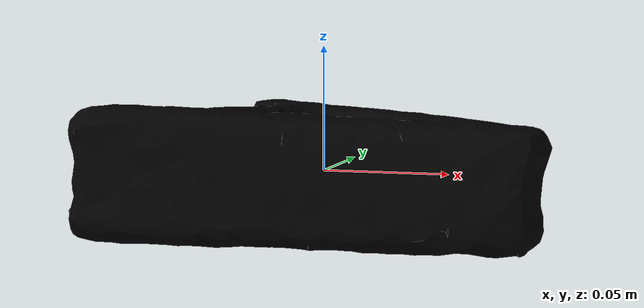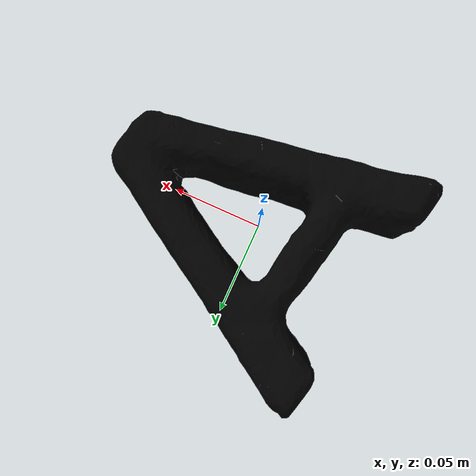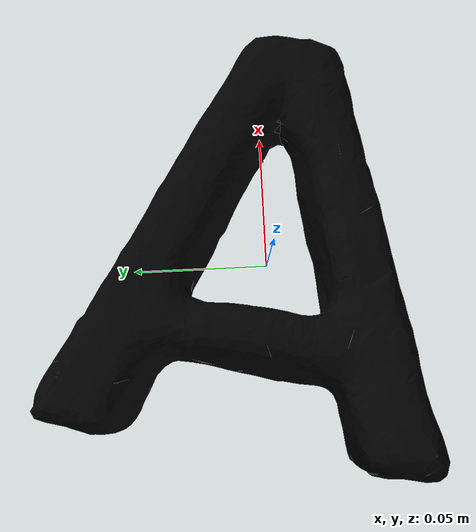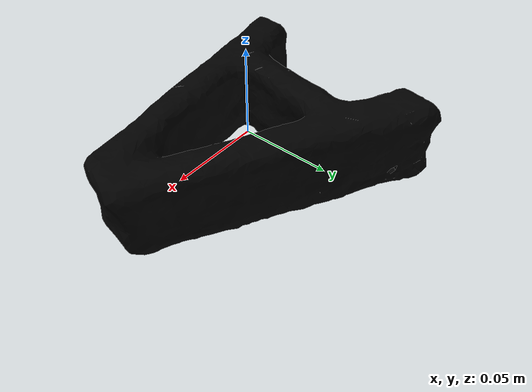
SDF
<?xml version="1.0"?>
<sdf version="1.7">
<!-- This SDF was autogenerated by controller_sdf_generation.py -->
  <model name="anything">
    <link name="body">
      <inertial>
        <pose>0 0 0 0 0 0</pose>
        <mass>1</mass>
        <inertia>
            <ixx>0.003</ixx>
            <iyy>0.003 </iyy>
            <izz>0.006 </izz>
            <ixy>0.0</ixy>
            <ixz>0.0</ixz>
            <iyz>0.0</iyz>
        </inertia>
      </inertial>

      <visual name="body">
        <pose>0 0 0 0 0 0</pose>
        <geometry>
          <mesh>
            <uri>A_shape_coarse.obj</uri>
          </mesh>
        </geometry>
        <material>
          <diffuse>0 0 0 1</diffuse>
        </material>
      </visual>
      <collision name="body_volume">
        <pose>0 0 0 0 0 0</pose>
            <geometry>
          <mesh>
            <uri>A_shape_coarse.obj</uri>
          </mesh>
        </geometry>
        <drake:proximity_properties>
          <drake:compliant_hydroelastic/>
          <drake:hydroelastic_modulus> 3.0e7 </drake:hydroelastic_modulus>
          <drake:mesh_resolution_hint> 0.18 </drake:mesh_resolution_hint>
          <drake:hunt_crossley_dissipation>10</drake:hunt_crossley_dissipation>
          <drake:mu_dynamic>0.3</drake:mu_dynamic>
        </drake:proximity_properties>
      </collision>
      <collision name="corner_nxynz">
        <geometry>
          <sphere>
            <radius>0.001</radius>
          </sphere>
        </geometry>
        <drake:proximity_properties>
        <drake:mu_dynamic>0.3</drake:mu_dynamic>
        </drake:proximity_properties>
        <pose> -0.08072039 0.08442577 -0.02735774 0 0 0</pose>
      </collision>
      <collision name="corner_nxnynz">
        <geometry>
          <sphere>
            <radius>0.001</radius>
          </sphere>
        </geometry>
        <drake:proximity_properties>
        <drake:mu_dynamic>0.3</drake:mu_dynamic>
        </drake:proximity_properties>
        <pose> -0.08072039 -0.05688186 -0.02735774 0 0 0</pose>
      </collision>
      <collision name="corner_xynz">
        <geometry>
          <sphere>
            <radius>0.001</radius>
          </sphere>
        </geometry>
        <drake:proximity_properties>
        <drake:mu_dynamic>0.3</drake:mu_dynamic>
        </drake:proximity_properties>
        <pose> 0.08762455 0.01377195 -0.02735774 0 0 0</pose>
      </collision>
    </link>
  </model>
</sdf>
